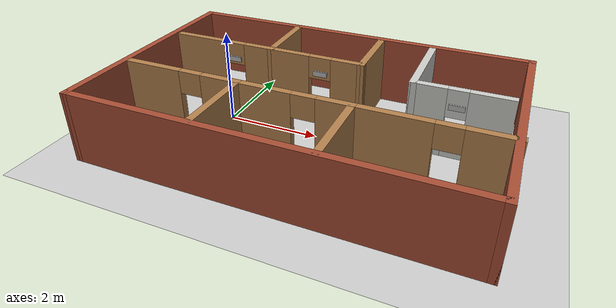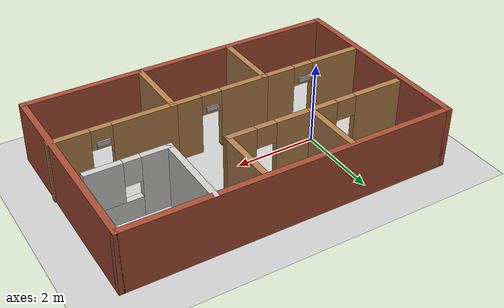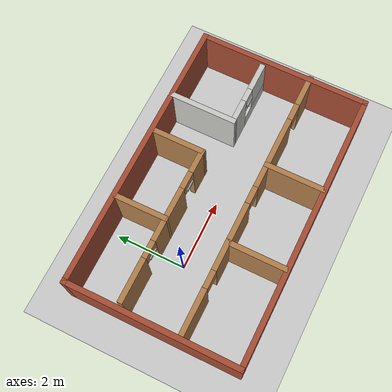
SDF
<sdf version="1.7">
 <world name="default">
  <light name="sun" type="directional">
   <pose>0 0 10 0 -0 0</pose>
   <diffuse>0.8 0.8 0.8 1</diffuse>
   <specular>0.2 0.2 0.2 1</specular>
   <attenuation>
    <range>1000</range>
    <constant>0.9</constant>
    <linear>0.01</linear>
    <quadratic>0.001</quadratic>
   </attenuation>
   <direction>-0.5 0.1 -0.9</direction>
   <spot><inner_angle>0</inner_angle><outer_angle>0</outer_angle><falloff>0</falloff></spot>
  </light>
  <model name="ground_plane">
   <static>1</static>
   <link name="link">
    <collision name="collision">
     <geometry><plane><normal>0 0 1</normal><size>100 100</size></plane></geometry>
     <surface>
      <contact><collide_bitmask>65535</collide_bitmask></contact>
      <friction><ode><mu>100</mu><mu2>50</mu2></ode></friction>
     </surface>
    </collision>
    <visual name="visual">
     <cast_shadows>0</cast_shadows>
     <geometry><plane><normal>0 0 1</normal><size>100 100</size></plane></geometry>
     <material>
      <script><uri>file://media/materials/scripts/gazebo.material</uri><name>Gazebo/Grey</name></script>
     </material>
    </visual>
   </link>
  </model>
  <gravity>0 0 -9.8</gravity>
  <magnetic_field>6e-06 2.3e-05 -4.2e-05</magnetic_field>
  <atmosphere type="adiabatic"/>
  <physics type="ode">
   <max_step_size>0.001</max_step_size>
   <real_time_factor>1</real_time_factor>
   <real_time_update_rate>1000</real_time_update_rate>
  </physics>
  <scene><ambient>0.4 0.4 0.4 1</ambient><background>0.7 0.7 0.7 1</background><shadows>1</shadows></scene>
  <spherical_coordinates>
   <surface_model>EARTH_WGS84</surface_model>
   <latitude_deg>0</latitude_deg>
   <longitude_deg>0</longitude_deg>
   <elevation>0</elevation>
   <heading_deg>0</heading_deg>
  </spherical_coordinates>
  <model name="restaurant_map">
   <pose>2.0295 -0.165 0 0 -0 0</pose>
   <link name="Wall_0">
    <collision name="Wall_0_Collision">
     <geometry><box><size>5 0.15 1.5</size></box></geometry>
     <pose>0 0 0.75 0 -0 0</pose>
    </collision>
    <visual name="Wall_0_Visual">
     <pose>0 0 0.75 0 -0 0</pose>
     <geometry><box><size>5 0.15 1.5</size></box></geometry>
     <material>
      <script><uri>file://media/materials/scripts/gazebo.material</uri><name>Gazebo/Bricks</name></script>
      <ambient>1 1 1 1</ambient>
     </material>
     <meta><layer>0</layer></meta>
    </visual>
    <pose>-3.9395 -0 0 0 -0 -1.5708</pose>
   </link>
   <link name="Wall_10">
    <collision name="Wall_10_Collision">
     <geometry><box><size>1.56038 0.15 1.5</size></box></geometry>
     <pose>0 0 0.75 0 -0 0</pose>
    </collision>
    <visual name="Wall_10_Visual">
     <pose>0 0 0.75 0 -0 0</pose>
     <geometry><box><size>1.56038 0.15 1.5</size></box></geometry>
     <material>
      <script><uri>file://media/materials/scripts/gazebo.material</uri><name>Gazebo/Wood</name></script>
      <ambient>1 1 1 1</ambient>
     </material>
     <meta><layer>0</layer></meta>
    </visual>
    <pose>-1.3955 1.637 0 0 -0 -1.5637</pose>
   </link>
   <link name="Wall_11">
    <pose>-2.5655 0.932 0 0 -0 3.14159</pose>
    <visual name="Wall_11_Visual_0">
     <pose>-0.881058 0 0.75 0 -0 0</pose>
     <geometry><box><size>0.737885 0.15 1.5</size></box></geometry>
     <material>
      <script><uri>file://media/materials/scripts/gazebo.material</uri><name>Gazebo/Wood</name></script>
      <ambient>1 1 1 1</ambient>
     </material>
     <meta><layer>0</layer></meta>
    </visual>
    <collision name="Wall_11_Collision_0">
     <geometry><box><size>0.737885 0.15 1.5</size></box></geometry>
     <pose>-0.881058 0 0.75 0 -0 0</pose>
    </collision>
    <visual name="Wall_11_Visual_1">
     <pose>0.618942 0 0.75 0 -0 0</pose>
     <geometry><box><size>1.26212 0.15 1.5</size></box></geometry>
     <material>
      <script><uri>file://media/materials/scripts/gazebo.material</uri><name>Gazebo/Wood</name></script>
      <ambient>1 1 1 1</ambient>
     </material>
     <meta><layer>0</layer></meta>
    </visual>
    <collision name="Wall_11_Collision_1">
     <geometry><box><size>1.26212 0.15 1.5</size></box></geometry>
     <pose>0.618942 0 0.75 0 -0 0</pose>
    </collision>
    <visual name="Wall_11_Visual_2">
     <pose>-0.262115 0 1.25 0 -0 0</pose>
     <geometry><box><size>0.5 0.15 0.5</size></box></geometry>
     <material>
      <script><uri>file://media/materials/scripts/gazebo.material</uri><name>Gazebo/Wood</name></script>
      <ambient>1 1 1 1</ambient>
     </material>
     <meta><layer>0</layer></meta>
    </visual>
    <collision name="Wall_11_Collision_2">
     <geometry><box><size>0.5 0.15 0.5</size></box></geometry>
     <pose>-0.262115 0 1.25 0 -0 0</pose>
    </collision>
   </link>
   <link name="Wall_14">
    <collision name="Wall_14_Collision">
     <geometry><box><size>2 0.15 1.5</size></box></geometry>
     <pose>0 0 0.75 0 -0 0</pose>
    </collision>
    <visual name="Wall_14_Visual">
     <pose>0 0 0.75 0 -0 0</pose>
     <geometry><box><size>2 0.15 1.5</size></box></geometry>
     <material>
      <script><uri>file://media/materials/scripts/gazebo.material</uri><name>Gazebo/CeilingTiled</name></script>
      <ambient>1 1 1 1</ambient>
     </material>
     <meta><layer>0</layer></meta>
    </visual>
    <pose>1.8595 1.497 0 0 -0 -1.5708</pose>
   </link>
   <link name="Wall_15">
    <pose>2.7845 0.572 0 0 -0 0</pose>
    <visual name="Wall_15_Visual_0">
     <pose>-0.6275 0 0.75 0 -0 0</pose>
     <geometry><box><size>0.745 0.15 1.5</size></box></geometry>
     <material>
      <script><uri>file://media/materials/scripts/gazebo.material</uri><name>Gazebo/CeilingTiled</name></script>
      <ambient>1 1 1 1</ambient>
     </material>
     <meta><layer>0</layer></meta>
    </visual>
    <collision name="Wall_15_Collision_0">
     <geometry><box><size>0.745 0.15 1.5</size></box></geometry>
     <pose>-0.6275 0 0.75 0 -0 0</pose>
    </collision>
    <visual name="Wall_15_Visual_1">
     <pose>0.3725 0 0.25 0 -0 0</pose>
     <geometry><box><size>1.255 0.15 0.5</size></box></geometry>
     <material>
      <script><uri>file://media/materials/scripts/gazebo.material</uri><name>Gazebo/CeilingTiled</name></script>
      <ambient>1 1 1 1</ambient>
     </material>
     <meta><layer>0</layer></meta>
    </visual>
    <collision name="Wall_15_Collision_1">
     <geometry><box><size>1.255 0.15 0.5</size></box></geometry>
     <pose>0.3725 0 0.25 0 -0 0</pose>
    </collision>
    <visual name="Wall_15_Visual_2">
     <pose>0.5725 0 1 0 -0 0</pose>
     <geometry><box><size>0.855 0.15 1</size></box></geometry>
     <material>
      <script><uri>file://media/materials/scripts/gazebo.material</uri><name>Gazebo/CeilingTiled</name></script>
      <ambient>1 1 1 1</ambient>
     </material>
     <meta><layer>0</layer></meta>
    </visual>
    <collision name="Wall_15_Collision_2">
     <geometry><box><size>0.855 0.15 1</size></box></geometry>
     <pose>0.5725 0 1 0 -0 0</pose>
    </collision>
    <visual name="Wall_15_Visual_3">
     <pose>-0.055 0 1.2 0 -0 0</pose>
     <geometry><box><size>0.4 0.15 0.6</size></box></geometry>
     <material>
      <script><uri>file://media/materials/scripts/gazebo.material</uri><name>Gazebo/CeilingTiled</name></script>
      <ambient>1 1 1 1</ambient>
     </material>
     <meta><layer>0</layer></meta>
    </visual>
    <collision name="Wall_15_Collision_3">
     <geometry><box><size>0.4 0.15 0.6</size></box></geometry>
     <pose>-0.055 0 1.2 0 -0 0</pose>
    </collision>
   </link>
   <link name="Wall_17">
    <pose>-0.3505 0.927 0 0 -0 -0.004808</pose>
    <visual name="Wall_17_Visual_0">
     <pose>-0.61813 0 0.75 0 -0 0</pose>
     <geometry><box><size>0.993787 0.15 1.5</size></box></geometry>
     <material>
      <script><uri>file://media/materials/scripts/gazebo.material</uri><name>Gazebo/Wood</name></script>
      <ambient>1 1 1 1</ambient>
     </material>
     <meta><layer>0</layer></meta>
    </visual>
    <collision name="Wall_17_Collision_0">
     <geometry><box><size>0.993787 0.15 1.5</size></box></geometry>
     <pose>-0.61813 0 0.75 0 -0 0</pose>
    </collision>
    <visual name="Wall_17_Visual_1">
     <pose>0.746894 0 0.75 0 -0 0</pose>
     <geometry><box><size>0.73626 0.15 1.5</size></box></geometry>
     <material>
      <script><uri>file://media/materials/scripts/gazebo.material</uri><name>Gazebo/Wood</name></script>
      <ambient>1 1 1 1</ambient>
     </material>
     <meta><layer>0</layer></meta>
    </visual>
    <collision name="Wall_17_Collision_1">
     <geometry><box><size>0.73626 0.15 1.5</size></box></geometry>
     <pose>0.746894 0 0.75 0 -0 0</pose>
    </collision>
    <visual name="Wall_17_Visual_2">
     <pose>0.128763 0 1.25 0 -0 0</pose>
     <geometry><box><size>0.5 0.15 0.5</size></box></geometry>
     <material>
      <script><uri>file://media/materials/scripts/gazebo.material</uri><name>Gazebo/Wood</name></script>
      <ambient>1 1 1 1</ambient>
     </material>
     <meta><layer>0</layer></meta>
    </visual>
    <collision name="Wall_17_Collision_2">
     <geometry><box><size>0.5 0.15 0.5</size></box></geometry>
     <pose>0.128763 0 1.25 0 -0 0</pose>
    </collision>
   </link>
   <link name="Wall_19">
    <collision name="Wall_19_Collision">
     <geometry><box><size>1.5 0.15 1.5</size></box></geometry>
     <pose>0 0 0.75 0 -0 0</pose>
    </collision>
    <visual name="Wall_19_Visual">
     <pose>0 0 0.75 0 -0 0</pose>
     <geometry><box><size>1.5 0.15 1.5</size></box></geometry>
     <material>
      <script><uri>file://media/materials/scripts/gazebo.material</uri><name>Gazebo/Wood</name></script>
      <ambient>1 1 1 1</ambient>
     </material>
     <meta><layer>0</layer></meta>
    </visual>
    <pose>0.6895 1.597 0 0 -0 1.5708</pose>
   </link>
   <link name="Wall_21">
    <pose>2.5145 -0.778 0 0 -0 3.14159</pose>
    <visual name="Wall_21_Visual_0">
     <pose>-1.0225 0 0.75 0 -0 0</pose>
     <geometry><box><size>0.955 0.15 1.5</size></box></geometry>
     <material>
      <script><uri>file://media/materials/scripts/gazebo.material</uri><name>Gazebo/Wood</name></script>
      <ambient>1 1 1 1</ambient>
     </material>
     <meta><layer>0</layer></meta>
    </visual>
    <collision name="Wall_21_Collision_0">
     <geometry><box><size>0.955 0.15 1.5</size></box></geometry>
     <pose>-1.0225 0 0.75 0 -0 0</pose>
    </collision>
    <visual name="Wall_21_Visual_1">
     <pose>0.7275 0 0.75 0 -0 0</pose>
     <geometry><box><size>1.545 0.15 1.5</size></box></geometry>
     <material>
      <script><uri>file://media/materials/scripts/gazebo.material</uri><name>Gazebo/Wood</name></script>
      <ambient>1 1 1 1</ambient>
     </material>
     <meta><layer>0</layer></meta>
    </visual>
    <collision name="Wall_21_Collision_1">
     <geometry><box><size>1.545 0.15 1.5</size></box></geometry>
     <pose>0.7275 0 0.75 0 -0 0</pose>
    </collision>
    <visual name="Wall_21_Visual_2">
     <pose>-0.295 0 1.25 0 -0 0</pose>
     <geometry><box><size>0.5 0.15 0.5</size></box></geometry>
     <material>
      <script><uri>file://media/materials/scripts/gazebo.material</uri><name>Gazebo/Wood</name></script>
      <ambient>1 1 1 1</ambient>
     </material>
     <meta><layer>0</layer></meta>
    </visual>
    <collision name="Wall_21_Collision_2">
     <geometry><box><size>0.5 0.15 0.5</size></box></geometry>
     <pose>-0.295 0 1.25 0 -0 0</pose>
    </collision>
   </link>
   <link name="Wall_22">
    <collision name="Wall_22_Collision">
     <geometry><box><size>1.75 0.15 1.5</size></box></geometry>
     <pose>0 0 0.75 0 -0 0</pose>
    </collision>
    <visual name="Wall_22_Visual">
     <pose>0 0 0.75 0 -0 0</pose>
     <geometry><box><size>1.75 0.15 1.5</size></box></geometry>
     <material>
      <script><uri>file://media/materials/scripts/gazebo.material</uri><name>Gazebo/Wood</name></script>
      <ambient>1 1 1 1</ambient>
     </material>
     <meta><layer>0</layer></meta>
    </visual>
    <pose>1.0895 -1.578 0 0 -0 -1.5708</pose>
   </link>
   <link name="Wall_26">
    <pose>-0.0855 -0.778 0 0 -0 3.14159</pose>
    <visual name="Wall_26_Visual_0">
     <pose>-0.8675 0 0.75 0 -0 0</pose>
     <geometry><box><size>0.765 0.15 1.5</size></box></geometry>
     <material>
      <script><uri>file://media/materials/scripts/gazebo.material</uri><name>Gazebo/Wood</name></script>
      <ambient>1 1 1 1</ambient>
     </material>
     <meta><layer>0</layer></meta>
    </visual>
    <collision name="Wall_26_Collision_0">
     <geometry><box><size>0.765 0.15 1.5</size></box></geometry>
     <pose>-0.8675 0 0.75 0 -0 0</pose>
    </collision>
    <visual name="Wall_26_Visual_1">
     <pose>0.6325 0 0.75 0 -0 0</pose>
     <geometry><box><size>1.235 0.15 1.5</size></box></geometry>
     <material>
      <script><uri>file://media/materials/scripts/gazebo.material</uri><name>Gazebo/Wood</name></script>
      <ambient>1 1 1 1</ambient>
     </material>
     <meta><layer>0</layer></meta>
    </visual>
    <collision name="Wall_26_Collision_1">
     <geometry><box><size>1.235 0.15 1.5</size></box></geometry>
     <pose>0.6325 0 0.75 0 -0 0</pose>
    </collision>
    <visual name="Wall_26_Visual_2">
     <pose>-0.235 0 1.25 0 -0 0</pose>
     <geometry><box><size>0.5 0.15 0.5</size></box></geometry>
     <material>
      <script><uri>file://media/materials/scripts/gazebo.material</uri><name>Gazebo/Wood</name></script>
      <ambient>1 1 1 1</ambient>
     </material>
     <meta><layer>0</layer></meta>
    </visual>
    <collision name="Wall_26_Collision_2">
     <geometry><box><size>0.5 0.15 0.5</size></box></geometry>
     <pose>-0.235 0 1.25 0 -0 0</pose>
    </collision>
   </link>
   <link name="Wall_27">
    <collision name="Wall_27_Collision">
     <geometry><box><size>1.75 0.15 1.5</size></box></geometry>
     <pose>0 0 0.75 0 -0 0</pose>
    </collision>
    <visual name="Wall_27_Visual">
     <pose>0 0 0.75 0 -0 0</pose>
     <geometry><box><size>1.75 0.15 1.5</size></box></geometry>
     <material>
      <script><uri>file://media/materials/scripts/gazebo.material</uri><name>Gazebo/Wood</name></script>
      <ambient>1 1 1 1</ambient>
     </material>
     <meta><layer>0</layer></meta>
    </visual>
    <pose>-1.2605 -1.578 0 0 -0 -1.5708</pose>
   </link>
   <link name="Wall_30">
    <pose>-2.5605 -0.778 0 0 -0 3.14159</pose>
    <visual name="Wall_30_Visual_0">
     <pose>-0.9325 0 0.75 0 -0 0</pose>
     <geometry><box><size>0.885 0.15 1.5</size></box></geometry>
     <material>
      <script><uri>file://media/materials/scripts/gazebo.material</uri><name>Gazebo/Wood</name></script>
      <ambient>1 1 1 1</ambient>
     </material>
     <meta><layer>0</layer></meta>
    </visual>
    <collision name="Wall_30_Collision_0">
     <geometry><box><size>0.885 0.15 1.5</size></box></geometry>
     <pose>-0.9325 0 0.75 0 -0 0</pose>
    </collision>
    <visual name="Wall_30_Visual_1">
     <pose>0.6925 0 0.75 0 -0 0</pose>
     <geometry><box><size>1.365 0.15 1.5</size></box></geometry>
     <material>
      <script><uri>file://media/materials/scripts/gazebo.material</uri><name>Gazebo/Wood</name></script>
      <ambient>1 1 1 1</ambient>
     </material>
     <meta><layer>0</layer></meta>
    </visual>
    <collision name="Wall_30_Collision_1">
     <geometry><box><size>1.365 0.15 1.5</size></box></geometry>
     <pose>0.6925 0 0.75 0 -0 0</pose>
    </collision>
    <visual name="Wall_30_Visual_2">
     <pose>-0.24 0 1.25 0 -0 0</pose>
     <geometry><box><size>0.5 0.15 0.5</size></box></geometry>
     <material>
      <script><uri>file://media/materials/scripts/gazebo.material</uri><name>Gazebo/Wood</name></script>
      <ambient>1 1 1 1</ambient>
     </material>
     <meta><layer>0</layer></meta>
    </visual>
    <collision name="Wall_30_Collision_2">
     <geometry><box><size>0.5 0.15 0.5</size></box></geometry>
     <pose>-0.24 0 1.25 0 -0 0</pose>
    </collision>
   </link>
   <link name="Wall_5">
    <collision name="Wall_5_Collision">
     <geometry><box><size>8 0.15 1.5</size></box></geometry>
     <pose>0 0 0.75 0 -0 0</pose>
    </collision>
    <visual name="Wall_5_Visual">
     <pose>0 0 0.75 0 -0 0</pose>
     <geometry><box><size>8 0.15 1.5</size></box></geometry>
     <material>
      <script><uri>file://media/materials/scripts/gazebo.material</uri><name>Gazebo/Bricks</name></script>
      <ambient>1 1 1 1</ambient>
     </material>
     <meta><layer>0</layer></meta>
    </visual>
    <pose>-0.0145 -2.425 0 0 -0 0</pose>
   </link>
   <link name="Wall_6">
    <collision name="Wall_6_Collision">
     <geometry><box><size>5 0.15 1.5</size></box></geometry>
     <pose>0 0 0.75 0 -0 0</pose>
    </collision>
    <visual name="Wall_6_Visual">
     <pose>0 0 0.75 0 -0 0</pose>
     <geometry><box><size>5 0.15 1.5</size></box></geometry>
     <material>
      <script><uri>file://media/materials/scripts/gazebo.material</uri><name>Gazebo/Bricks</name></script>
      <ambient>1 1 1 1</ambient>
     </material>
     <meta><layer>0</layer></meta>
    </visual>
    <pose>3.9105 -0 0 0 -0 1.5708</pose>
   </link>
   <link name="Wall_8">
    <collision name="Wall_8_Collision">
     <geometry><box><size>8 0.15 1.5</size></box></geometry>
     <pose>0 0 0.75 0 -0 0</pose>
    </collision>
    <visual name="Wall_8_Visual">
     <pose>0 0 0.75 0 -0 0</pose>
     <geometry><box><size>8 0.15 1.5</size></box></geometry>
     <material>
      <script><uri>file://media/materials/scripts/gazebo.material</uri><name>Gazebo/Bricks</name></script>
      <ambient>1 1 1 1</ambient>
     </material>
     <meta><layer>0</layer></meta>
    </visual>
    <pose>-0.0145 2.425 0 0 -0 0</pose>
   </link>
   <static>1</static>
  </model>
  <model name="door101">
   <link name="link_0">
    <inertial>
     <mass>0.00125828</mass>
     <inertia>
      <ixx>1.45989e-06</ixx>
      <ixy>0</ixy>
      <ixz>0</ixz>
      <iyy>1.17334e-05</iyy>
      <iyz>0</iyz>
      <izz>1.05402e-05</izz>
     </inertia>
    </inertial>
    <visual name="visual">
     <geometry><box><size>0.315037 0.035663 0.112476</size></box></geometry>
     <material>
      <lighting>1</lighting>
      <script>
       <uri>model://door101/materials/scripts</uri>
       <uri>model://door101/materials/textures/</uri>
       <name>Door/no101</name>
      </script>
      <shader type="pixel"/>
     </material>
    </visual>
    <collision name="collision">
     <geometry><box><size>0.315037 0.035663 0.112476</size></box></geometry>
     <surface>
      <friction>
       <ode><mu>1</mu><mu2>1</mu2><fdir1>0 0 0</fdir1><slip1>0</slip1><slip2>0</slip2></ode>
       <torsional>
        <coefficient>1</coefficient>
        <patch_radius>0</patch_radius>
        <surface_radius>0</surface_radius>
        <use_patch_radius>1</use_patch_radius>
        <ode><slip>0</slip></ode>
       </torsional>
      </friction>
      <bounce><restitution_coefficient>0</restitution_coefficient><threshold>1e+06</threshold></bounce>
      <contact>
       <collide_without_contact>0</collide_without_contact>
       <collide_without_contact_bitmask>1</collide_without_contact_bitmask>
       <collide_bitmask>1</collide_bitmask>
       <ode>
        <soft_cfm>0</soft_cfm>
        <soft_erp>0.2</soft_erp>
        <kp>1e+13</kp>
        <kd>1</kd>
        <max_vel>0.01</max_vel>
        <min_depth>0</min_depth>
       </ode>
       <bullet>
        <split_impulse>1</split_impulse>
        <split_impulse_penetration_threshold>-0.01</split_impulse_penetration_threshold>
        <soft_cfm>0</soft_cfm>
        <soft_erp>0.2</soft_erp>
        <kp>1e+13</kp>
        <kd>1</kd>
       </bullet>
      </contact>
     </surface>
    </collision>
   </link>
   <static>1</static>
   <pose>4.82249 -0.847398 1.13859 0 -0 0</pose>
  </model>
  <model name="door102">
   <link name="link_0">
    <inertial>
     <mass>0.00125828</mass>
     <inertia>
      <ixx>1.45989e-06</ixx>
      <ixy>0</ixy>
      <ixz>0</ixz>
      <iyy>1.17334e-05</iyy>
      <iyz>0</iyz>
      <izz>1.05402e-05</izz>
     </inertia>
    </inertial>
    <visual name="visual">
     <geometry><box><size>0.315037 0.035663 0.112476</size></box></geometry>
     <material>
      <lighting>1</lighting>
      <script>
       <uri>model://door102/materials/scripts</uri>
       <uri>model://door102/materials/textures/</uri>
       <name>Door/no102</name>
      </script>
      <shader type="pixel"/>
     </material>
    </visual>
    <collision name="collision">
     <geometry><box><size>0.315037 0.035663 0.112476</size></box></geometry>
     <surface>
      <friction>
       <ode><mu>1</mu><mu2>1</mu2><fdir1>0 0 0</fdir1><slip1>0</slip1><slip2>0</slip2></ode>
       <torsional>
        <coefficient>1</coefficient>
        <patch_radius>0</patch_radius>
        <surface_radius>0</surface_radius>
        <use_patch_radius>1</use_patch_radius>
        <ode><slip>0</slip></ode>
       </torsional>
      </friction>
      <bounce><restitution_coefficient>0</restitution_coefficient><threshold>1e+06</threshold></bounce>
      <contact>
       <collide_without_contact>0</collide_without_contact>
       <collide_without_contact_bitmask>1</collide_without_contact_bitmask>
       <collide_bitmask>1</collide_bitmask>
       <ode>
        <soft_cfm>0</soft_cfm>
        <soft_erp>0.2</soft_erp>
        <kp>1e+13</kp>
        <kd>1</kd>
        <max_vel>0.01</max_vel>
        <min_depth>0</min_depth>
       </ode>
       <bullet>
        <split_impulse>1</split_impulse>
        <split_impulse_penetration_threshold>-0.01</split_impulse_penetration_threshold>
        <soft_cfm>0</soft_cfm>
        <soft_erp>0.2</soft_erp>
        <kp>1e+13</kp>
        <kd>1</kd>
       </bullet>
      </contact>
     </surface>
    </collision>
   </link>
   <static>1</static>
   <pose>2.17268 -0.848458 1.1361 0 -0 0</pose>
  </model>
  <model name="door103">
   <link name="link_0">
    <inertial>
     <mass>0.00125828</mass>
     <inertia>
      <ixx>1.45989e-06</ixx>
      <ixy>0</ixy>
      <ixz>0</ixz>
      <iyy>1.17334e-05</iyy>
      <iyz>0</iyz>
      <izz>1.05402e-05</izz>
     </inertia>
    </inertial>
    <visual name="visual">
     <geometry><box><size>0.315037 0.035663 0.112476</size></box></geometry>
     <material>
      <lighting>1</lighting>
      <script>
       <uri>model://door103/materials/scripts</uri>
       <uri>model://door103/materials/textures/</uri>
       <name>Door/no103</name>
      </script>
      <shader type="pixel"/>
     </material>
    </visual>
    <collision name="collision">
     <geometry><box><size>0.315037 0.035663 0.112476</size></box></geometry>
     <surface>
      <friction>
       <ode><mu>1</mu><mu2>1</mu2><fdir1>0 0 0</fdir1><slip1>0</slip1><slip2>0</slip2></ode>
       <torsional>
        <coefficient>1</coefficient>
        <patch_radius>0</patch_radius>
        <surface_radius>0</surface_radius>
        <use_patch_radius>1</use_patch_radius>
        <ode><slip>0</slip></ode>
       </torsional>
      </friction>
      <bounce><restitution_coefficient>0</restitution_coefficient><threshold>1e+06</threshold></bounce>
      <contact>
       <collide_without_contact>0</collide_without_contact>
       <collide_without_contact_bitmask>1</collide_without_contact_bitmask>
       <collide_bitmask>1</collide_bitmask>
       <ode>
        <soft_cfm>0</soft_cfm>
        <soft_erp>0.2</soft_erp>
        <kp>1e+13</kp>
        <kd>1</kd>
        <max_vel>0.01</max_vel>
        <min_depth>0</min_depth>
       </ode>
       <bullet>
        <split_impulse>1</split_impulse>
        <split_impulse_penetration_threshold>-0.01</split_impulse_penetration_threshold>
        <soft_cfm>0</soft_cfm>
        <soft_erp>0.2</soft_erp>
        <kp>1e+13</kp>
        <kd>1</kd>
       </bullet>
      </contact>
     </surface>
    </collision>
   </link>
   <static>1</static>
   <pose>-0.310851 -0.847777 1.13459 0 -0 0</pose>
  </model>
  <model name="door104">
   <link name="link_0">
    <inertial>
     <mass>0.00125828</mass>
     <inertia>
      <ixx>1.45989e-06</ixx>
      <ixy>0</ixy>
      <ixz>0</ixz>
      <iyy>1.17334e-05</iyy>
      <iyz>0</iyz>
      <izz>1.05402e-05</izz>
     </inertia>
    </inertial>
    <visual name="visual">
     <geometry><box><size>0.315037 0.035663 0.112476</size></box></geometry>
     <material>
      <lighting>1</lighting>
      <script>
       <uri>model://door104/materials/scripts</uri>
       <uri>model://door104/materials/textures/</uri>
       <name>Door/no104</name>
      </script>
      <shader type="pixel"/>
     </material>
    </visual>
    <collision name="collision">
     <geometry><box><size>0.315037 0.035663 0.112476</size></box></geometry>
     <surface>
      <friction>
       <ode><mu>1</mu><mu2>1</mu2><fdir1>0 0 0</fdir1><slip1>0</slip1><slip2>0</slip2></ode>
       <torsional>
        <coefficient>1</coefficient>
        <patch_radius>0</patch_radius>
        <surface_radius>0</surface_radius>
        <use_patch_radius>1</use_patch_radius>
        <ode><slip>0</slip></ode>
       </torsional>
      </friction>
      <bounce><restitution_coefficient>0</restitution_coefficient><threshold>1e+06</threshold></bounce>
      <contact>
       <collide_without_contact>0</collide_without_contact>
       <collide_without_contact_bitmask>1</collide_without_contact_bitmask>
       <collide_bitmask>1</collide_bitmask>
       <ode>
        <soft_cfm>0</soft_cfm>
        <soft_erp>0.2</soft_erp>
        <kp>1e+13</kp>
        <kd>1</kd>
        <max_vel>0.01</max_vel>
        <min_depth>0</min_depth>
       </ode>
       <bullet>
        <split_impulse>1</split_impulse>
        <split_impulse_penetration_threshold>-0.01</split_impulse_penetration_threshold>
        <soft_cfm>0</soft_cfm>
        <soft_erp>0.2</soft_erp>
        <kp>1e+13</kp>
        <kd>1</kd>
       </bullet>
      </contact>
     </surface>
    </collision>
   </link>
   <static>1</static>
   <pose>-0.256993 0.672999 1.13364 0 -0 0</pose>
  </model>
  <model name="door105">
   <link name="link_0">
    <inertial>
     <mass>0.00125828</mass>
     <inertia>
      <ixx>1.45989e-06</ixx>
      <ixy>0</ixy>
      <ixz>0</ixz>
      <iyy>1.17334e-05</iyy>
      <iyz>0</iyz>
      <izz>1.05402e-05</izz>
     </inertia>
    </inertial>
    <visual name="visual">
     <geometry><box><size>0.315037 0.035663 0.112476</size></box></geometry>
     <material>
      <lighting>1</lighting>
      <script>
       <uri>model://door105/materials/scripts</uri>
       <uri>model://door105/materials/textures/</uri>
       <name>Door/no105</name>
      </script>
      <shader type="pixel"/>
     </material>
    </visual>
    <collision name="collision">
     <geometry><box><size>0.315037 0.035663 0.112476</size></box></geometry>
     <surface>
      <friction>
       <ode><mu>1</mu><mu2>1</mu2><fdir1>0 0 0</fdir1><slip1>0</slip1><slip2>0</slip2></ode>
       <torsional>
        <coefficient>1</coefficient>
        <patch_radius>0</patch_radius>
        <surface_radius>0</surface_radius>
        <use_patch_radius>1</use_patch_radius>
        <ode><slip>0</slip></ode>
       </torsional>
      </friction>
      <bounce><restitution_coefficient>0</restitution_coefficient><threshold>1e+06</threshold></bounce>
      <contact>
       <collide_without_contact>0</collide_without_contact>
       <collide_without_contact_bitmask>1</collide_without_contact_bitmask>
       <collide_bitmask>1</collide_bitmask>
       <ode>
        <soft_cfm>0</soft_cfm>
        <soft_erp>0.2</soft_erp>
        <kp>1e+13</kp>
        <kd>1</kd>
        <max_vel>0.01</max_vel>
        <min_depth>0</min_depth>
       </ode>
       <bullet>
        <split_impulse>1</split_impulse>
        <split_impulse_penetration_threshold>-0.01</split_impulse_penetration_threshold>
        <soft_cfm>0</soft_cfm>
        <soft_erp>0.2</soft_erp>
        <kp>1e+13</kp>
        <kd>1</kd>
       </bullet>
      </contact>
     </surface>
    </collision>
   </link>
   <static>1</static>
   <pose>1.82668 0.669933 1.1356 0 -0 0</pose>
  </model>
  <model name="door000">
   <link name="link_0">
    <inertial>
     <mass>0.00125828</mass>
     <inertia>
      <ixx>1.45989e-06</ixx>
      <ixy>0</ixy>
      <ixz>0</ixz>
      <iyy>1.17334e-05</iyy>
      <iyz>0</iyz>
      <izz>1.05402e-05</izz>
     </inertia>
    </inertial>
    <visual name="visual">
     <geometry><box><size>0.315037 0.035663 0.112476</size></box></geometry>
     <material>
      <lighting>1</lighting>
      <script>
       <uri>model://door000/materials/scripts</uri>
       <uri>model://door000/materials/textures/</uri>
       <name>Door/no000</name>
      </script>
      <shader type="pixel"/>
     </material>
    </visual>
    <collision name="collision">
     <geometry><box><size>0.315037 0.035663 0.112476</size></box></geometry>
     <surface>
      <friction>
       <ode><mu>1</mu><mu2>1</mu2><fdir1>0 0 0</fdir1><slip1>0</slip1><slip2>0</slip2></ode>
       <torsional>
        <coefficient>1</coefficient>
        <patch_radius>0</patch_radius>
        <surface_radius>0</surface_radius>
        <use_patch_radius>1</use_patch_radius>
        <ode><slip>0</slip></ode>
       </torsional>
      </friction>
      <bounce><restitution_coefficient>0</restitution_coefficient><threshold>1e+06</threshold></bounce>
      <contact>
       <collide_without_contact>0</collide_without_contact>
       <collide_without_contact_bitmask>1</collide_without_contact_bitmask>
       <collide_bitmask>1</collide_bitmask>
       <ode>
        <soft_cfm>0</soft_cfm>
        <soft_erp>0.2</soft_erp>
        <kp>1e+13</kp>
        <kd>1</kd>
        <max_vel>0.01</max_vel>
        <min_depth>0</min_depth>
       </ode>
       <bullet>
        <split_impulse>1</split_impulse>
        <split_impulse_penetration_threshold>-0.01</split_impulse_penetration_threshold>
        <soft_cfm>0</soft_cfm>
        <soft_erp>0.2</soft_erp>
        <kp>1e+13</kp>
        <kd>1</kd>
       </bullet>
      </contact>
     </surface>
    </collision>
   </link>
   <static>1</static>
   <pose>4.7716 0.313645 1.14003 0 -0 0</pose>
  </model>
 </world>
</sdf>
